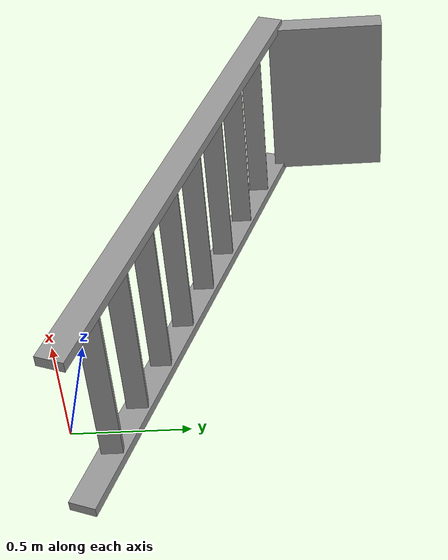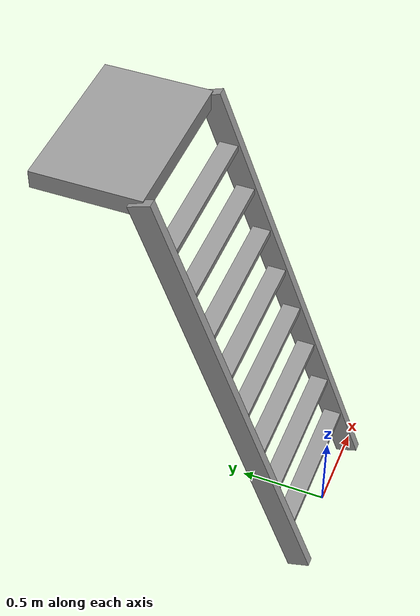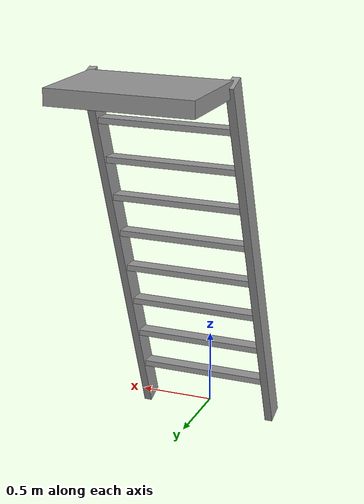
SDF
<?xml version="1.0"?>
<sdf version="1.5">
  <model name= "ladder_70deg_0rails" >
    <static>true</static>
         <link name="step0" >
           <pose>0 0.09705872913765398 0.26666666666666666 0 0 0 </pose>
           <inertial>
             <mass> 9.7548192</mass>
             <inertia>
             <ixx> 0.009571241631672</ixx>
             <iyy> 0.6596303120915761</iyy>
             <izz> 0.666841521540096</izz>
             <ixy>0</ixy>
             <ixz>0</ixz>
             <iyz>0</iyz>
             </inertia>
           </inertial>

           <collision name="collision">
             <geometry>
              <box>
                <size>  0.9  0.1016  0.0381  </size>
              </box>
             </geometry>
           </collision>

          <visual name="visual">
            <geometry>
              <box>
                <size>  0.9  0.1016  0.0381  </size>
              </box>
            </geometry>
            <material>
              <script>
                <uri>file://media/materials/scripts/gazebo.material</uri>
                <name>Gazebo/Grey</name>
              </script>
            </material>
          </visual>
        </link>
         <link name="step1" >
           <pose>0 0.19411745827530796 0.5333333333333333 0 0 0 </pose>
           <inertial>
             <mass> 9.7548192</mass>
             <inertia>
             <ixx> 0.009571241631672</ixx>
             <iyy> 0.6596303120915761</iyy>
             <izz> 0.666841521540096</izz>
             <ixy>0</ixy>
             <ixz>0</ixz>
             <iyz>0</iyz>
             </inertia>
           </inertial>

           <collision name="collision">
             <geometry>
              <box>
                <size>  0.9  0.1016  0.0381  </size>
              </box>
             </geometry>
           </collision>

          <visual name="visual">
            <geometry>
              <box>
                <size>  0.9  0.1016  0.0381  </size>
              </box>
            </geometry>
            <material>
              <script>
                <uri>file://media/materials/scripts/gazebo.material</uri>
                <name>Gazebo/Grey</name>
              </script>
            </material>
          </visual>
        </link>
         <link name="step2" >
           <pose>0 0.2911761874129619 0.8 0 0 0 </pose>
           <inertial>
             <mass> 9.7548192</mass>
             <inertia>
             <ixx> 0.009571241631672</ixx>
             <iyy> 0.6596303120915761</iyy>
             <izz> 0.666841521540096</izz>
             <ixy>0</ixy>
             <ixz>0</ixz>
             <iyz>0</iyz>
             </inertia>
           </inertial>

           <collision name="collision">
             <geometry>
              <box>
                <size>  0.9  0.1016  0.0381  </size>
              </box>
             </geometry>
           </collision>

          <visual name="visual">
            <geometry>
              <box>
                <size>  0.9  0.1016  0.0381  </size>
              </box>
            </geometry>
            <material>
              <script>
                <uri>file://media/materials/scripts/gazebo.material</uri>
                <name>Gazebo/Grey</name>
              </script>
            </material>
          </visual>
        </link>
         <link name="step3" >
           <pose>0 0.3882349165506159 1.0666666666666667 0 0 0 </pose>
           <inertial>
             <mass> 9.7548192</mass>
             <inertia>
             <ixx> 0.009571241631672</ixx>
             <iyy> 0.6596303120915761</iyy>
             <izz> 0.666841521540096</izz>
             <ixy>0</ixy>
             <ixz>0</ixz>
             <iyz>0</iyz>
             </inertia>
           </inertial>

           <collision name="collision">
             <geometry>
              <box>
                <size>  0.9  0.1016  0.0381  </size>
              </box>
             </geometry>
           </collision>

          <visual name="visual">
            <geometry>
              <box>
                <size>  0.9  0.1016  0.0381  </size>
              </box>
            </geometry>
            <material>
              <script>
                <uri>file://media/materials/scripts/gazebo.material</uri>
                <name>Gazebo/Grey</name>
              </script>
            </material>
          </visual>
        </link>
         <link name="step4" >
           <pose>0 0.48529364568826994 1.3333333333333333 0 0 0 </pose>
           <inertial>
             <mass> 9.7548192</mass>
             <inertia>
             <ixx> 0.009571241631672</ixx>
             <iyy> 0.6596303120915761</iyy>
             <izz> 0.666841521540096</izz>
             <ixy>0</ixy>
             <ixz>0</ixz>
             <iyz>0</iyz>
             </inertia>
           </inertial>

           <collision name="collision">
             <geometry>
              <box>
                <size>  0.9  0.1016  0.0381  </size>
              </box>
             </geometry>
           </collision>

          <visual name="visual">
            <geometry>
              <box>
                <size>  0.9  0.1016  0.0381  </size>
              </box>
            </geometry>
            <material>
              <script>
                <uri>file://media/materials/scripts/gazebo.material</uri>
                <name>Gazebo/Grey</name>
              </script>
            </material>
          </visual>
        </link>
         <link name="step5" >
           <pose>0 0.5823523748259238 1.6 0 0 0 </pose>
           <inertial>
             <mass> 9.7548192</mass>
             <inertia>
             <ixx> 0.009571241631672</ixx>
             <iyy> 0.6596303120915761</iyy>
             <izz> 0.666841521540096</izz>
             <ixy>0</ixy>
             <ixz>0</ixz>
             <iyz>0</iyz>
             </inertia>
           </inertial>

           <collision name="collision">
             <geometry>
              <box>
                <size>  0.9  0.1016  0.0381  </size>
              </box>
             </geometry>
           </collision>

          <visual name="visual">
            <geometry>
              <box>
                <size>  0.9  0.1016  0.0381  </size>
              </box>
            </geometry>
            <material>
              <script>
                <uri>file://media/materials/scripts/gazebo.material</uri>
                <name>Gazebo/Grey</name>
              </script>
            </material>
          </visual>
        </link>
         <link name="step6" >
           <pose>0 0.6794111039635778 1.8666666666666667 0 0 0 </pose>
           <inertial>
             <mass> 9.7548192</mass>
             <inertia>
             <ixx> 0.009571241631672</ixx>
             <iyy> 0.6596303120915761</iyy>
             <izz> 0.666841521540096</izz>
             <ixy>0</ixy>
             <ixz>0</ixz>
             <iyz>0</iyz>
             </inertia>
           </inertial>

           <collision name="collision">
             <geometry>
              <box>
                <size>  0.9  0.1016  0.0381  </size>
              </box>
             </geometry>
           </collision>

          <visual name="visual">
            <geometry>
              <box>
                <size>  0.9  0.1016  0.0381  </size>
              </box>
            </geometry>
            <material>
              <script>
                <uri>file://media/materials/scripts/gazebo.material</uri>
                <name>Gazebo/Grey</name>
              </script>
            </material>
          </visual>
        </link>
         <link name="step7" >
           <pose>0 0.7764698331012319 2.1333333333333333 0 0 0 </pose>
           <inertial>
             <mass> 9.7548192</mass>
             <inertia>
             <ixx> 0.009571241631672</ixx>
             <iyy> 0.6596303120915761</iyy>
             <izz> 0.666841521540096</izz>
             <ixy>0</ixy>
             <ixz>0</ixz>
             <iyz>0</iyz>
             </inertia>
           </inertial>

           <collision name="collision">
             <geometry>
              <box>
                <size>  0.9  0.1016  0.0381  </size>
              </box>
             </geometry>
           </collision>

          <visual name="visual">
            <geometry>
              <box>
                <size>  0.9  0.1016  0.0381  </size>
              </box>
            </geometry>
            <material>
              <script>
                <uri>file://media/materials/scripts/gazebo.material</uri>
                <name>Gazebo/Grey</name>
              </script>
            </material>
          </visual>
        </link>
    <link name="landing">
      <pose>0 1.1735285622388858 2.4 0 0 0 </pose>
        <inertial>
          <mass> 57.607200000000006</mass>
          <inertia>
          <ixx> 1.735184598966</ixx>
          <iyy> 3.8954545989660008</iyy>
          <izz> 5.616702</izz>
          <ixy>0</ixy>
          <ixz>0</ixz>
          <iyz>0</iyz>
          </inertia>
        </inertial>

        <collision name="collision">
          <geometry>
           <box>
             <size> 0.9 0.6 0.1016</size>
           </box>
          </geometry>
        </collision>

        <visual name="visual">
          <geometry>
            <box>
             <size> 0.9 0.6 0.1016</size>
            </box>
          </geometry>
          <material>
            <script>
              <uri>file://media/materials/scripts/gazebo.material</uri>
              <name>Gazebo/Grey</name>
            </script>
          </material>
        </visual>
    </link>

      <link name="left_side_wall" >
        <pose>-0.45 0.43676428111944293 1.2 1.2217304763960306 0 0 </pose>
        <collision name="collision">
          <geometry>
            <box>
              <size> 0.0508  2.6340266539421893  0.13 </size>
            </box>
          </geometry>
        </collision>

        <visual name="visual">
          <geometry>
            <box>
              <size> 0.0508  2.6340266539421893  0.13 </size>
            </box>
          </geometry>
          <material>
            <script>
              <uri>file://media/materials/scripts/gazebo.material</uri>
              <name>Gazebo/Grey</name>
            </script>
          </material>
        </visual>

      </link>
      <link name="right_side_wall" >
        <pose>0.45 0.43676428111944293 1.2 1.2217304763960306 0 0 </pose>
        <collision name="collision">
          <geometry>
            <box>
              <size> 0.0508  2.6340266539421893  0.13 </size>
            </box>
          </geometry>
        </collision>

        <visual name="visual">
          <geometry>
            <box>
              <size> 0.0508  2.6340266539421893  0.13 </size>
            </box>
          </geometry>
          <material>
            <script>
              <uri>file://media/materials/scripts/gazebo.material</uri>
              <name>Gazebo/Grey</name>
            </script>
          </material>
        </visual>

      </link>

  </model>
</sdf>
